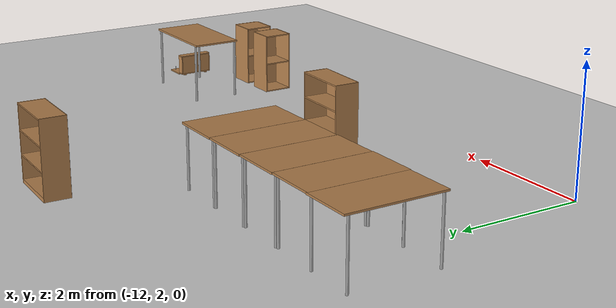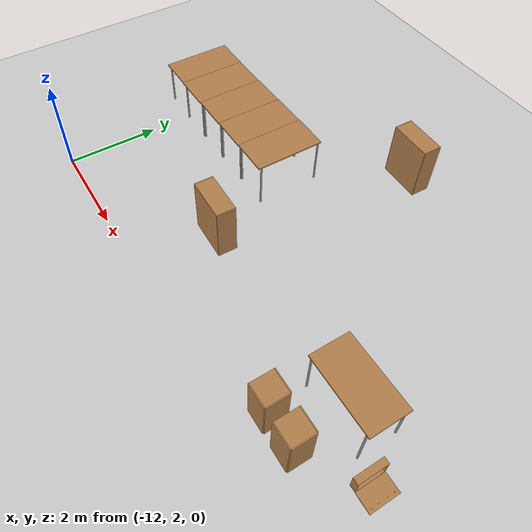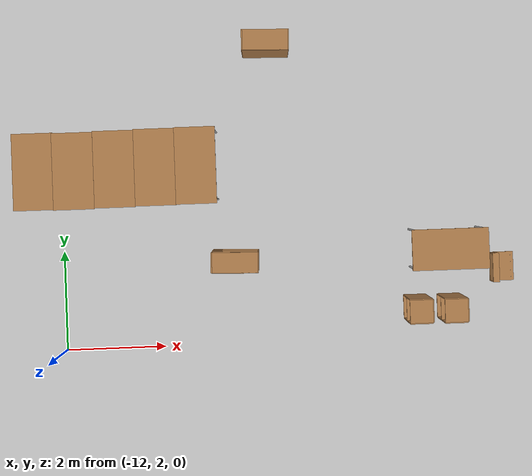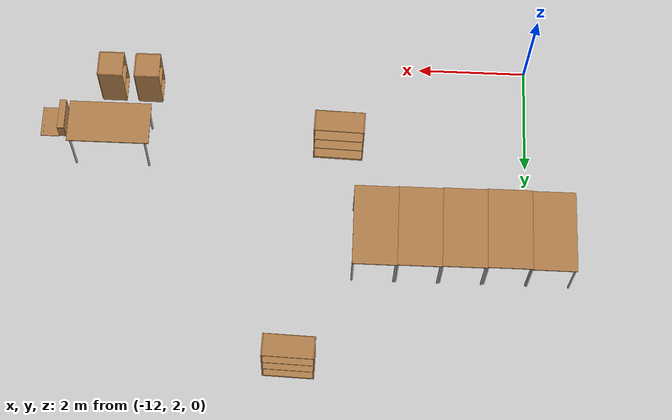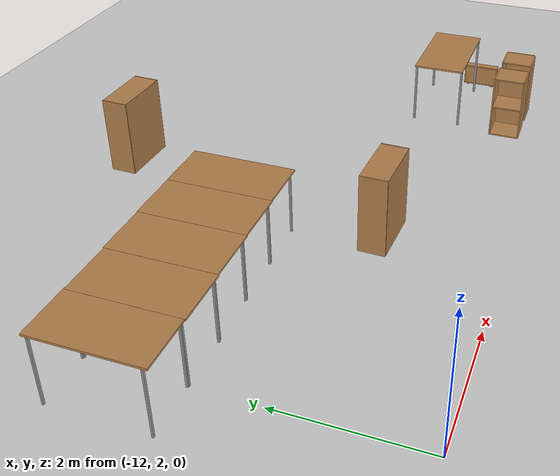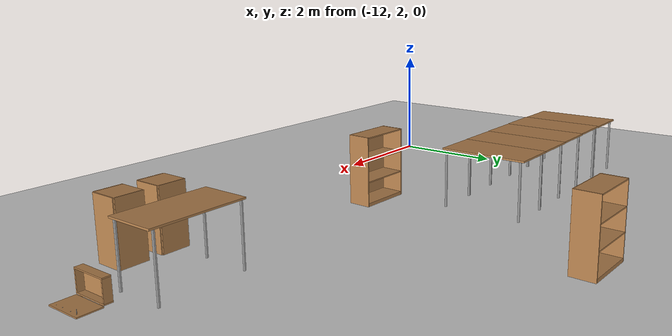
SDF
<sdf version="1.6">
 <world name="default">
  <model name="ground_plane">
   <static>1</static>
   <link name="link">
    <collision name="collision">
     <geometry><plane><normal>0 0 1</normal><size>100 100</size></plane></geometry>
     <surface>
      <contact><collide_bitmask>65535</collide_bitmask></contact>
      <friction><ode><mu>100</mu><mu2>50</mu2></ode></friction>
     </surface>
    </collision>
    <visual name="visual">
     <cast_shadows>0</cast_shadows>
     <geometry><plane><normal>0 0 1</normal><size>100 100</size></plane></geometry>
     <material>
      <script><uri>file://media/materials/scripts/gazebo.material</uri><name>Gazebo/Grey</name></script>
     </material>
    </visual>
   </link>
  </model>
  <model name="table_12">
   <static>1</static>
   <link name="link">
    <collision name="surface">
     <pose>0 0 1 0 -0 0</pose>
     <geometry><box><size>1.5 0.8 0.03</size></box></geometry>
     <surface><friction><ode><mu>0.6</mu><mu2>0.6</mu2></ode></friction></surface>
    </collision>
    <visual name="visual1">
     <pose>0 0 1 0 -0 0</pose>
     <geometry><box><size>1.5 0.8 0.03</size></box></geometry>
     <material>
      <script><uri>file://media/materials/scripts/gazebo.material</uri><name>Gazebo/Wood</name></script>
     </material>
    </visual>
    <collision name="front_left_leg">
     <pose>0.68 0.38 0.5 0 -0 0</pose>
     <geometry><cylinder><radius>0.02</radius><length>1</length></cylinder></geometry>
    </collision>
    <visual name="front_left_leg">
     <pose>0.68 0.38 0.5 0 -0 0</pose>
     <geometry><cylinder><radius>0.02</radius><length>1</length></cylinder></geometry>
     <material>
      <script><uri>file://media/materials/scripts/gazebo.material</uri><name>Gazebo/Grey</name></script>
     </material>
    </visual>
    <collision name="front_right_leg">
     <pose>0.68 -0.38 0.5 0 -0 0</pose>
     <geometry><cylinder><radius>0.02</radius><length>1</length></cylinder></geometry>
    </collision>
    <visual name="front_right_leg">
     <pose>0.68 -0.38 0.5 0 -0 0</pose>
     <geometry><cylinder><radius>0.02</radius><length>1</length></cylinder></geometry>
     <material>
      <script><uri>file://media/materials/scripts/gazebo.material</uri><name>Gazebo/Grey</name></script>
     </material>
    </visual>
    <collision name="back_right_leg">
     <pose>-0.68 -0.38 0.5 0 -0 0</pose>
     <geometry><cylinder><radius>0.02</radius><length>1</length></cylinder></geometry>
    </collision>
    <visual name="back_right_leg">
     <pose>-0.68 -0.38 0.5 0 -0 0</pose>
     <geometry><cylinder><radius>0.02</radius><length>1</length></cylinder></geometry>
     <material>
      <script><uri>file://media/materials/scripts/gazebo.material</uri><name>Gazebo/Grey</name></script>
     </material>
    </visual>
    <collision name="back_left_leg">
     <pose>-0.68 0.38 0.5 0 -0 0</pose>
     <geometry><cylinder><radius>0.02</radius><length>1</length></cylinder></geometry>
    </collision>
    <visual name="back_left_leg">
     <pose>-0.68 0.38 0.5 0 -0 0</pose>
     <geometry><cylinder><radius>0.02</radius><length>1</length></cylinder></geometry>
     <material>
      <script><uri>file://media/materials/scripts/gazebo.material</uri><name>Gazebo/Grey</name></script>
     </material>
    </visual>
   </link>
   <pose>-4.30223 3.82653 0 0 -0 0</pose>
  </model>
  <model name="table_13_clone_0">
   <static>1</static>
   <link name="link">
    <collision name="surface">
     <pose>0 0 1 0 -0 0</pose>
     <geometry><box><size>1.5 0.8 0.03</size></box></geometry>
     <surface><friction><ode><mu>0.6</mu><mu2>0.6</mu2></ode></friction></surface>
    </collision>
    <visual name="visual1">
     <pose>0 0 1 0 -0 0</pose>
     <geometry><box><size>1.5 0.8 0.03</size></box></geometry>
     <material>
      <script><uri>file://media/materials/scripts/gazebo.material</uri><name>Gazebo/Wood</name></script>
     </material>
    </visual>
    <collision name="front_left_leg">
     <pose>0.68 0.38 0.5 0 -0 0</pose>
     <geometry><cylinder><radius>0.02</radius><length>1</length></cylinder></geometry>
    </collision>
    <visual name="front_left_leg">
     <pose>0.68 0.38 0.5 0 -0 0</pose>
     <geometry><cylinder><radius>0.02</radius><length>1</length></cylinder></geometry>
     <material>
      <script><uri>file://media/materials/scripts/gazebo.material</uri><name>Gazebo/Grey</name></script>
     </material>
    </visual>
    <collision name="front_right_leg">
     <pose>0.68 -0.38 0.5 0 -0 0</pose>
     <geometry><cylinder><radius>0.02</radius><length>1</length></cylinder></geometry>
    </collision>
    <visual name="front_right_leg">
     <pose>0.68 -0.38 0.5 0 -0 0</pose>
     <geometry><cylinder><radius>0.02</radius><length>1</length></cylinder></geometry>
     <material>
      <script><uri>file://media/materials/scripts/gazebo.material</uri><name>Gazebo/Grey</name></script>
     </material>
    </visual>
    <collision name="back_right_leg">
     <pose>-0.68 -0.38 0.5 0 -0 0</pose>
     <geometry><cylinder><radius>0.02</radius><length>1</length></cylinder></geometry>
    </collision>
    <visual name="back_right_leg">
     <pose>-0.68 -0.38 0.5 0 -0 0</pose>
     <geometry><cylinder><radius>0.02</radius><length>1</length></cylinder></geometry>
     <material>
      <script><uri>file://media/materials/scripts/gazebo.material</uri><name>Gazebo/Grey</name></script>
     </material>
    </visual>
    <collision name="back_left_leg">
     <pose>-0.68 0.38 0.5 0 -0 0</pose>
     <geometry><cylinder><radius>0.02</radius><length>1</length></cylinder></geometry>
    </collision>
    <visual name="back_left_leg">
     <pose>-0.68 0.38 0.5 0 -0 0</pose>
     <geometry><cylinder><radius>0.02</radius><length>1</length></cylinder></geometry>
     <material>
      <script><uri>file://media/materials/scripts/gazebo.material</uri><name>Gazebo/Grey</name></script>
     </material>
    </visual>
   </link>
   <pose>-12.3756 5.62057 0.002096 -0.000489 -1e-06 -1.57229</pose>
  </model>
  <model name="table_13_clone_1">
   <static>1</static>
   <link name="link">
    <collision name="surface">
     <pose>0 0 1 0 -0 0</pose>
     <geometry><box><size>1.5 0.8 0.03</size></box></geometry>
     <surface><friction><ode><mu>0.6</mu><mu2>0.6</mu2></ode></friction></surface>
    </collision>
    <visual name="visual1">
     <pose>0 0 1 0 -0 0</pose>
     <geometry><box><size>1.5 0.8 0.03</size></box></geometry>
     <material>
      <script><uri>file://media/materials/scripts/gazebo.material</uri><name>Gazebo/Wood</name></script>
     </material>
    </visual>
    <collision name="front_left_leg">
     <pose>0.68 0.38 0.5 0 -0 0</pose>
     <geometry><cylinder><radius>0.02</radius><length>1</length></cylinder></geometry>
    </collision>
    <visual name="front_left_leg">
     <pose>0.68 0.38 0.5 0 -0 0</pose>
     <geometry><cylinder><radius>0.02</radius><length>1</length></cylinder></geometry>
     <material>
      <script><uri>file://media/materials/scripts/gazebo.material</uri><name>Gazebo/Grey</name></script>
     </material>
    </visual>
    <collision name="front_right_leg">
     <pose>0.68 -0.38 0.5 0 -0 0</pose>
     <geometry><cylinder><radius>0.02</radius><length>1</length></cylinder></geometry>
    </collision>
    <visual name="front_right_leg">
     <pose>0.68 -0.38 0.5 0 -0 0</pose>
     <geometry><cylinder><radius>0.02</radius><length>1</length></cylinder></geometry>
     <material>
      <script><uri>file://media/materials/scripts/gazebo.material</uri><name>Gazebo/Grey</name></script>
     </material>
    </visual>
    <collision name="back_right_leg">
     <pose>-0.68 -0.38 0.5 0 -0 0</pose>
     <geometry><cylinder><radius>0.02</radius><length>1</length></cylinder></geometry>
    </collision>
    <visual name="back_right_leg">
     <pose>-0.68 -0.38 0.5 0 -0 0</pose>
     <geometry><cylinder><radius>0.02</radius><length>1</length></cylinder></geometry>
     <material>
      <script><uri>file://media/materials/scripts/gazebo.material</uri><name>Gazebo/Grey</name></script>
     </material>
    </visual>
    <collision name="back_left_leg">
     <pose>-0.68 0.38 0.5 0 -0 0</pose>
     <geometry><cylinder><radius>0.02</radius><length>1</length></cylinder></geometry>
    </collision>
    <visual name="back_left_leg">
     <pose>-0.68 0.38 0.5 0 -0 0</pose>
     <geometry><cylinder><radius>0.02</radius><length>1</length></cylinder></geometry>
     <material>
      <script><uri>file://media/materials/scripts/gazebo.material</uri><name>Gazebo/Grey</name></script>
     </material>
    </visual>
   </link>
   <pose>-11.5994 5.60858 0.002096 -0.000489 -1e-06 -1.57229</pose>
  </model>
  <model name="table_13_clone_2">
   <static>1</static>
   <link name="link">
    <collision name="surface">
     <pose>0 0 1 0 -0 0</pose>
     <geometry><box><size>1.5 0.8 0.03</size></box></geometry>
     <surface><friction><ode><mu>0.6</mu><mu2>0.6</mu2></ode></friction></surface>
    </collision>
    <visual name="visual1">
     <pose>0 0 1 0 -0 0</pose>
     <geometry><box><size>1.5 0.8 0.03</size></box></geometry>
     <material>
      <script><uri>file://media/materials/scripts/gazebo.material</uri><name>Gazebo/Wood</name></script>
     </material>
    </visual>
    <collision name="front_left_leg">
     <pose>0.68 0.38 0.5 0 -0 0</pose>
     <geometry><cylinder><radius>0.02</radius><length>1</length></cylinder></geometry>
    </collision>
    <visual name="front_left_leg">
     <pose>0.68 0.38 0.5 0 -0 0</pose>
     <geometry><cylinder><radius>0.02</radius><length>1</length></cylinder></geometry>
     <material>
      <script><uri>file://media/materials/scripts/gazebo.material</uri><name>Gazebo/Grey</name></script>
     </material>
    </visual>
    <collision name="front_right_leg">
     <pose>0.68 -0.38 0.5 0 -0 0</pose>
     <geometry><cylinder><radius>0.02</radius><length>1</length></cylinder></geometry>
    </collision>
    <visual name="front_right_leg">
     <pose>0.68 -0.38 0.5 0 -0 0</pose>
     <geometry><cylinder><radius>0.02</radius><length>1</length></cylinder></geometry>
     <material>
      <script><uri>file://media/materials/scripts/gazebo.material</uri><name>Gazebo/Grey</name></script>
     </material>
    </visual>
    <collision name="back_right_leg">
     <pose>-0.68 -0.38 0.5 0 -0 0</pose>
     <geometry><cylinder><radius>0.02</radius><length>1</length></cylinder></geometry>
    </collision>
    <visual name="back_right_leg">
     <pose>-0.68 -0.38 0.5 0 -0 0</pose>
     <geometry><cylinder><radius>0.02</radius><length>1</length></cylinder></geometry>
     <material>
      <script><uri>file://media/materials/scripts/gazebo.material</uri><name>Gazebo/Grey</name></script>
     </material>
    </visual>
    <collision name="back_left_leg">
     <pose>-0.68 0.38 0.5 0 -0 0</pose>
     <geometry><cylinder><radius>0.02</radius><length>1</length></cylinder></geometry>
    </collision>
    <visual name="back_left_leg">
     <pose>-0.68 0.38 0.5 0 -0 0</pose>
     <geometry><cylinder><radius>0.02</radius><length>1</length></cylinder></geometry>
     <material>
      <script><uri>file://media/materials/scripts/gazebo.material</uri><name>Gazebo/Grey</name></script>
     </material>
    </visual>
   </link>
   <pose>-10.7992 5.62021 0.002096 -0.000489 -1e-06 -1.57229</pose>
  </model>
  <model name="table_13_clone_3">
   <static>1</static>
   <link name="link">
    <collision name="surface">
     <pose>0 0 1 0 -0 0</pose>
     <geometry><box><size>1.5 0.8 0.03</size></box></geometry>
     <surface><friction><ode><mu>0.6</mu><mu2>0.6</mu2></ode></friction></surface>
    </collision>
    <visual name="visual1">
     <pose>0 0 1 0 -0 0</pose>
     <geometry><box><size>1.5 0.8 0.03</size></box></geometry>
     <material>
      <script><uri>file://media/materials/scripts/gazebo.material</uri><name>Gazebo/Wood</name></script>
     </material>
    </visual>
    <collision name="front_left_leg">
     <pose>0.68 0.38 0.5 0 -0 0</pose>
     <geometry><cylinder><radius>0.02</radius><length>1</length></cylinder></geometry>
    </collision>
    <visual name="front_left_leg">
     <pose>0.68 0.38 0.5 0 -0 0</pose>
     <geometry><cylinder><radius>0.02</radius><length>1</length></cylinder></geometry>
     <material>
      <script><uri>file://media/materials/scripts/gazebo.material</uri><name>Gazebo/Grey</name></script>
     </material>
    </visual>
    <collision name="front_right_leg">
     <pose>0.68 -0.38 0.5 0 -0 0</pose>
     <geometry><cylinder><radius>0.02</radius><length>1</length></cylinder></geometry>
    </collision>
    <visual name="front_right_leg">
     <pose>0.68 -0.38 0.5 0 -0 0</pose>
     <geometry><cylinder><radius>0.02</radius><length>1</length></cylinder></geometry>
     <material>
      <script><uri>file://media/materials/scripts/gazebo.material</uri><name>Gazebo/Grey</name></script>
     </material>
    </visual>
    <collision name="back_right_leg">
     <pose>-0.68 -0.38 0.5 0 -0 0</pose>
     <geometry><cylinder><radius>0.02</radius><length>1</length></cylinder></geometry>
    </collision>
    <visual name="back_right_leg">
     <pose>-0.68 -0.38 0.5 0 -0 0</pose>
     <geometry><cylinder><radius>0.02</radius><length>1</length></cylinder></geometry>
     <material>
      <script><uri>file://media/materials/scripts/gazebo.material</uri><name>Gazebo/Grey</name></script>
     </material>
    </visual>
    <collision name="back_left_leg">
     <pose>-0.68 0.38 0.5 0 -0 0</pose>
     <geometry><cylinder><radius>0.02</radius><length>1</length></cylinder></geometry>
    </collision>
    <visual name="back_left_leg">
     <pose>-0.68 0.38 0.5 0 -0 0</pose>
     <geometry><cylinder><radius>0.02</radius><length>1</length></cylinder></geometry>
     <material>
      <script><uri>file://media/materials/scripts/gazebo.material</uri><name>Gazebo/Grey</name></script>
     </material>
    </visual>
   </link>
   <pose>-10.005 5.63035 0.002096 -0.000489 -1e-06 -1.57229</pose>
  </model>
  <model name="table_13_clone_4">
   <static>1</static>
   <link name="link">
    <collision name="surface">
     <pose>0 0 1 0 -0 0</pose>
     <geometry><box><size>1.5 0.8 0.03</size></box></geometry>
     <surface><friction><ode><mu>0.6</mu><mu2>0.6</mu2></ode></friction></surface>
    </collision>
    <visual name="visual1">
     <pose>0 0 1 0 -0 0</pose>
     <geometry><box><size>1.5 0.8 0.03</size></box></geometry>
     <material>
      <script><uri>file://media/materials/scripts/gazebo.material</uri><name>Gazebo/Wood</name></script>
     </material>
    </visual>
    <collision name="front_left_leg">
     <pose>0.68 0.38 0.5 0 -0 0</pose>
     <geometry><cylinder><radius>0.02</radius><length>1</length></cylinder></geometry>
    </collision>
    <visual name="front_left_leg">
     <pose>0.68 0.38 0.5 0 -0 0</pose>
     <geometry><cylinder><radius>0.02</radius><length>1</length></cylinder></geometry>
     <material>
      <script><uri>file://media/materials/scripts/gazebo.material</uri><name>Gazebo/Grey</name></script>
     </material>
    </visual>
    <collision name="front_right_leg">
     <pose>0.68 -0.38 0.5 0 -0 0</pose>
     <geometry><cylinder><radius>0.02</radius><length>1</length></cylinder></geometry>
    </collision>
    <visual name="front_right_leg">
     <pose>0.68 -0.38 0.5 0 -0 0</pose>
     <geometry><cylinder><radius>0.02</radius><length>1</length></cylinder></geometry>
     <material>
      <script><uri>file://media/materials/scripts/gazebo.material</uri><name>Gazebo/Grey</name></script>
     </material>
    </visual>
    <collision name="back_right_leg">
     <pose>-0.68 -0.38 0.5 0 -0 0</pose>
     <geometry><cylinder><radius>0.02</radius><length>1</length></cylinder></geometry>
    </collision>
    <visual name="back_right_leg">
     <pose>-0.68 -0.38 0.5 0 -0 0</pose>
     <geometry><cylinder><radius>0.02</radius><length>1</length></cylinder></geometry>
     <material>
      <script><uri>file://media/materials/scripts/gazebo.material</uri><name>Gazebo/Grey</name></script>
     </material>
    </visual>
    <collision name="back_left_leg">
     <pose>-0.68 0.38 0.5 0 -0 0</pose>
     <geometry><cylinder><radius>0.02</radius><length>1</length></cylinder></geometry>
    </collision>
    <visual name="back_left_leg">
     <pose>-0.68 0.38 0.5 0 -0 0</pose>
     <geometry><cylinder><radius>0.02</radius><length>1</length></cylinder></geometry>
     <material>
      <script><uri>file://media/materials/scripts/gazebo.material</uri><name>Gazebo/Grey</name></script>
     </material>
    </visual>
   </link>
   <pose>-9.2126 5.63744 0.002102 -0.000489 -1e-06 -1.57229</pose>
  </model>
  <model name="wooden_case_metal_peg">
   <link name="wooden_case::base">
    <pose>0 0 0.024 0 -0 0</pose>
    <inertial>
     <pose>-0.022184 0 0.171592 0 -0 0</pose>
     <mass>3.96264</mass>
     <inertia>
      <ixx>0.213536</ixx>
      <ixy>0</ixy>
      <ixz>0.000779377</ixz>
      <iyy>0.0708943</iyy>
      <iyz>0</iyz>
      <izz>0.154604</izz>
     </inertia>
    </inertial>
    <collision name="collision_back">
     <pose>-0.053975 0 0.1778 0 -0 0</pose>
     <geometry><box><size>0.01905 0.5461 0.3175</size></box></geometry>
     <surface>
      <contact>
       <poissons_ratio>0.347</poissons_ratio>
       <elastic_modulus>8.8e+09</elastic_modulus>
       <ode><kp>100000</kp><kd>100</kd><max_vel>100</max_vel><min_depth>0.001</min_depth></ode>
      </contact>
      <friction>
       <torsional>
        <coefficient>1</coefficient>
        <use_patch_radius>0</use_patch_radius>
        <surface_radius>0.01</surface_radius>
       </torsional>
      </friction>
     </surface>
    </collision>
    <visual name="visual_back">
     <pose>-0.053975 0 0.1778 0 -0 0</pose>
     <geometry><box><size>0.01905 0.5461 0.3175</size></box></geometry>
     <material>
      <script><uri>file://media/materials/scripts/gazebo.material</uri><name>Gazebo/Wood</name></script>
     </material>
    </visual>
    <collision name="collision_bottom">
     <pose>0 0 0.009525 0 -0 0</pose>
     <geometry><box><size>0.127 0.5842 0.01905</size></box></geometry>
     <surface>
      <contact>
       <poissons_ratio>0.347</poissons_ratio>
       <elastic_modulus>8.8e+09</elastic_modulus>
       <ode><kp>100000</kp><kd>100</kd><max_vel>100</max_vel><min_depth>0.001</min_depth></ode>
      </contact>
      <friction>
       <torsional>
        <coefficient>1</coefficient>
        <use_patch_radius>0</use_patch_radius>
        <surface_radius>0.01</surface_radius>
       </torsional>
      </friction>
     </surface>
    </collision>
    <visual name="visual_bottom">
     <pose>0 0 0.009525 0 -0 0</pose>
     <geometry><box><size>0.127 0.5842 0.01905</size></box></geometry>
     <material>
      <script><uri>file://media/materials/scripts/gazebo.material</uri><name>Gazebo/Wood</name></script>
     </material>
    </visual>
    <collision name="collision_top">
     <pose>0 0 0.346075 0 -0 0</pose>
     <geometry><box><size>0.127 0.5842 0.01905</size></box></geometry>
     <surface>
      <contact>
       <poissons_ratio>0.347</poissons_ratio>
       <elastic_modulus>8.8e+09</elastic_modulus>
       <ode><kp>100000</kp><kd>100</kd><max_vel>100</max_vel><min_depth>0.001</min_depth></ode>
      </contact>
      <friction>
       <torsional>
        <coefficient>1</coefficient>
        <use_patch_radius>0</use_patch_radius>
        <surface_radius>0.01</surface_radius>
       </torsional>
      </friction>
     </surface>
    </collision>
    <visual name="visual_top">
     <pose>0 0 0.346075 0 -0 0</pose>
     <geometry><box><size>0.127 0.5842 0.01905</size></box></geometry>
     <material>
      <script><uri>file://media/materials/scripts/gazebo.material</uri><name>Gazebo/Wood</name></script>
     </material>
    </visual>
    <collision name="collision_left">
     <pose>0 -0.282575 0.1778 0 -0 0</pose>
     <geometry><box><size>0.127 0.01905 0.3175</size></box></geometry>
     <surface>
      <contact>
       <poissons_ratio>0.347</poissons_ratio>
       <elastic_modulus>8.8e+09</elastic_modulus>
       <ode><kp>100000</kp><kd>100</kd><max_vel>100</max_vel><min_depth>0.001</min_depth></ode>
      </contact>
      <friction>
       <torsional>
        <coefficient>1</coefficient>
        <use_patch_radius>0</use_patch_radius>
        <surface_radius>0.01</surface_radius>
       </torsional>
      </friction>
     </surface>
    </collision>
    <visual name="visual_left">
     <pose>0 -0.282575 0.1778 0 -0 0</pose>
     <geometry><box><size>0.127 0.01905 0.3175</size></box></geometry>
     <material>
      <script><uri>file://media/materials/scripts/gazebo.material</uri><name>Gazebo/Wood</name></script>
     </material>
    </visual>
    <collision name="collision_right">
     <pose>0 0.282575 0.1778 0 -0 0</pose>
     <geometry><box><size>0.127 0.01905 0.3175</size></box></geometry>
     <surface>
      <contact>
       <poissons_ratio>0.347</poissons_ratio>
       <elastic_modulus>8.8e+09</elastic_modulus>
       <ode><kp>100000</kp><kd>100</kd><max_vel>100</max_vel><min_depth>0.001</min_depth></ode>
      </contact>
      <friction>
       <torsional>
        <coefficient>1</coefficient>
        <use_patch_radius>0</use_patch_radius>
        <surface_radius>0.01</surface_radius>
       </torsional>
      </friction>
     </surface>
    </collision>
    <visual name="visual_right">
     <pose>0 0.282575 0.1778 0 -0 0</pose>
     <geometry><box><size>0.127 0.01905 0.3175</size></box></geometry>
     <material>
      <script><uri>file://media/materials/scripts/gazebo.material</uri><name>Gazebo/Wood</name></script>
     </material>
    </visual>
    <collision name="collision_block_left">
     <pose>0.0095 -0.2151 -0.012 0 -0 0</pose>
     <geometry><box><size>0.108 0.05 0.024</size></box></geometry>
     <surface>
      <contact>
       <poissons_ratio>0.347</poissons_ratio>
       <elastic_modulus>8.8e+09</elastic_modulus>
       <ode><kp>100000</kp><kd>100</kd><max_vel>100</max_vel><min_depth>0.001</min_depth></ode>
      </contact>
      <friction>
       <torsional>
        <coefficient>1</coefficient>
        <use_patch_radius>0</use_patch_radius>
        <surface_radius>0.01</surface_radius>
       </torsional>
      </friction>
     </surface>
    </collision>
    <visual name="visual_block_left">
     <pose>0.0095 -0.2151 -0.012 0 -0 0</pose>
     <geometry><box><size>0.108 0.05 0.024</size></box></geometry>
     <material>
      <script><uri>file://media/materials/scripts/gazebo.material</uri><name>Gazebo/Wood</name></script>
     </material>
    </visual>
    <collision name="collision_block_right">
     <pose>0.0095 0.2151 -0.012 0 -0 0</pose>
     <geometry><box><size>0.108 0.05 0.024</size></box></geometry>
     <surface>
      <contact>
       <poissons_ratio>0.347</poissons_ratio>
       <elastic_modulus>8.8e+09</elastic_modulus>
       <ode><kp>100000</kp><kd>100</kd><max_vel>100</max_vel><min_depth>0.001</min_depth></ode>
      </contact>
      <friction>
       <torsional>
        <coefficient>1</coefficient>
        <use_patch_radius>0</use_patch_radius>
        <surface_radius>0.01</surface_radius>
       </torsional>
      </friction>
     </surface>
    </collision>
    <visual name="visual_block_right">
     <pose>0.0095 0.2151 -0.012 0 -0 0</pose>
     <geometry><box><size>0.108 0.05 0.024</size></box></geometry>
     <material>
      <script><uri>file://media/materials/scripts/gazebo.material</uri><name>Gazebo/Wood</name></script>
     </material>
    </visual>
   </link>
   <link name="wooden_case::lid">
    <pose>0.243775 0 0.009525 0 -0 0</pose>
    <inertial>
     <mass>1.97874</mass>
     <inertia>
      <ixx>0.0563367</ixx>
      <ixy>0</ixy>
      <ixz>0</ixz>
      <iyy>0.020911</iyy>
      <iyz>0</iyz>
      <izz>0.0771281</izz>
     </inertia>
    </inertial>
    <collision name="collision">
     <geometry><box><size>0.3556 0.5842 0.01905</size></box></geometry>
     <surface>
      <contact>
       <poissons_ratio>0.347</poissons_ratio>
       <elastic_modulus>8.8e+09</elastic_modulus>
       <ode><kp>100000</kp><kd>100</kd><max_vel>100</max_vel><min_depth>0.001</min_depth></ode>
      </contact>
      <friction>
       <torsional>
        <coefficient>1</coefficient>
        <use_patch_radius>0</use_patch_radius>
        <surface_radius>0.01</surface_radius>
       </torsional>
      </friction>
     </surface>
    </collision>
    <visual name="visual">
     <geometry><box><size>0.3556 0.5842 0.01905</size></box></geometry>
     <material>
      <script><uri>file://media/materials/scripts/gazebo.material</uri><name>Gazebo/Wood</name></script>
     </material>
    </visual>
    <visual name="tee_nut_1">
     <pose>0.122 -0.216 0 0 -0 0</pose>
     <geometry><cylinder><radius>0.00635</radius><length>0.0192405</length></cylinder></geometry>
     <material>
      <script><uri>file://media/materials/scripts/gazebo.material</uri><name>Gazebo/Grey</name></script>
     </material>
    </visual>
    <visual name="tee_nut_2">
     <pose>0.122 -0.088 0 0 -0 0</pose>
     <geometry><cylinder><radius>0.00635</radius><length>0.0192405</length></cylinder></geometry>
     <material>
      <script><uri>file://media/materials/scripts/gazebo.material</uri><name>Gazebo/Grey</name></script>
     </material>
    </visual>
    <visual name="tee_nut_3">
     <pose>0.122 0.088 0 0 -0 0</pose>
     <geometry><cylinder><radius>0.00635</radius><length>0.0192405</length></cylinder></geometry>
     <material>
      <script><uri>file://media/materials/scripts/gazebo.material</uri><name>Gazebo/Grey</name></script>
     </material>
    </visual>
    <visual name="tee_nut_4">
     <pose>0.122 0.216 0 0 -0 0</pose>
     <geometry><cylinder><radius>0.00635</radius><length>0.0192405</length></cylinder></geometry>
     <material>
      <script><uri>file://media/materials/scripts/gazebo.material</uri><name>Gazebo/Grey</name></script>
     </material>
    </visual>
   </link>
   <joint name="wooden_case::lid_hinge" type="revolute">
    <pose>-0.1778 0 0.01905 0 -0 0</pose>
    <parent>wooden_case::base</parent>
    <child>wooden_case::lid</child>
    <axis>
     <xyz>0 1 0</xyz>
     <limit><upper>0.523599</upper><lower>-1.5708</lower></limit>
     <use_parent_model_frame>0</use_parent_model_frame>
     <dynamics><spring_reference>0</spring_reference><spring_stiffness>0</spring_stiffness></dynamics>
    </axis>
   </joint>
   <link name="peg::link">
    <pose>0.365774 0.216 0.05005 0 -0 0</pose>
    <inertial>
     <mass>0.0121</mass>
     <inertia>
      <ixx>3.90898e-06</ixx>
      <ixy>0</ixy>
      <ixz>0</ixz>
      <iyy>3.90898e-06</iyy>
      <iyz>0</iyz>
      <izz>6.58845e-08</izz>
     </inertia>
    </inertial>
    <collision name="collision">
     <geometry><cylinder><radius>0.0033</radius><length>0.062</length></cylinder></geometry>
     <surface>
      <contact>
       <poissons_ratio>0.305</poissons_ratio>
       <elastic_modulus>2e+11</elastic_modulus>
       <ode><kp>100000</kp><kd>100</kd><max_vel>100</max_vel><min_depth>0.001</min_depth></ode>
      </contact>
      <friction>
       <torsional>
        <coefficient>1</coefficient>
        <use_patch_radius>0</use_patch_radius>
        <surface_radius>0.01</surface_radius>
       </torsional>
      </friction>
     </surface>
    </collision>
    <visual name="visual">
     <geometry><cylinder><radius>0.0033</radius><length>0.062</length></cylinder></geometry>
     <material>
      <script><uri>file://media/materials/scripts/gazebo.material</uri><name>Gazebo/Grey</name></script>
     </material>
    </visual>
   </link>
   <joint name="case_peg" type="revolute">
    <child>peg::link</child>
    <parent>wooden_case::lid</parent>
    <axis>
     <xyz>0 0 1</xyz>
     <limit><upper>0</upper><lower>0</lower></limit>
     <use_parent_model_frame>0</use_parent_model_frame>
     <dynamics><spring_reference>0</spring_reference><spring_stiffness>0</spring_stiffness></dynamics>
    </axis>
   </joint>
   <pose>-3.30085 3.38994 -0.001057 0 -0.000428 1e-06</pose>
  </model>
  <model name="bookshelf_clone_clone_0">
   <static>1</static>
   <link name="link">
    <inertial><mass>1</mass></inertial>
    <collision name="back">
     <pose>0 0.005 0.6 0 -0 0</pose>
     <geometry><box><size>0.9 0.01 1.2</size></box></geometry>
    </collision>
    <visual name="visual1">
     <pose>0 0.005 0.6 0 -0 0</pose>
     <geometry><box><size>0.9 0.01 1.2</size></box></geometry>
     <material>
      <script><uri>file://media/materials/scripts/gazebo.material</uri><name>Gazebo/Wood</name></script>
     </material>
    </visual>
    <collision name="left_side">
     <pose>0.45 -0.195 0.6 0 -0 0</pose>
     <geometry><box><size>0.02 0.4 1.2</size></box></geometry>
    </collision>
    <visual name="visual2">
     <pose>0.45 -0.195 0.6 0 -0 0</pose>
     <geometry><box><size>0.02 0.4 1.2</size></box></geometry>
     <material>
      <script><uri>file://media/materials/scripts/gazebo.material</uri><name>Gazebo/Wood</name></script>
     </material>
    </visual>
    <collision name="right_side">
     <pose>-0.45 -0.195 0.6 0 -0 0</pose>
     <geometry><box><size>0.02 0.4 1.2</size></box></geometry>
    </collision>
    <visual name="visual3">
     <pose>-0.45 -0.195 0.6 0 -0 0</pose>
     <geometry><box><size>0.02 0.4 1.2</size></box></geometry>
     <material>
      <script><uri>file://media/materials/scripts/gazebo.material</uri><name>Gazebo/Wood</name></script>
     </material>
    </visual>
    <collision name="bottom">
     <pose>0 -0.195 0.03 0 -0 0</pose>
     <geometry><box><size>0.88 0.4 0.06</size></box></geometry>
    </collision>
    <visual name="visual4">
     <pose>0 -0.195 0.03 0 -0 0</pose>
     <geometry><box><size>0.88 0.4 0.06</size></box></geometry>
     <material>
      <script><uri>file://media/materials/scripts/gazebo.material</uri><name>Gazebo/Wood</name></script>
     </material>
    </visual>
    <collision name="top">
     <pose>0 -0.195 1.19 0 -0 0</pose>
     <geometry><box><size>0.88 0.4 0.02</size></box></geometry>
    </collision>
    <visual name="visual5">
     <pose>0 -0.195 1.19 0 -0 0</pose>
     <geometry><box><size>0.88 0.4 0.02</size></box></geometry>
     <material>
      <script><uri>file://media/materials/scripts/gazebo.material</uri><name>Gazebo/Wood</name></script>
     </material>
    </visual>
    <collision name="low_shelf">
     <pose>0 -0.195 0.43 0 -0 0</pose>
     <geometry><box><size>0.88 0.4 0.02</size></box></geometry>
    </collision>
    <visual name="visual6">
     <pose>0 -0.195 0.43 0 -0 0</pose>
     <geometry><box><size>0.88 0.4 0.02</size></box></geometry>
     <material>
      <script><uri>file://media/materials/scripts/gazebo.material</uri><name>Gazebo/Wood</name></script>
     </material>
    </visual>
    <collision name="high_shelf">
     <pose>0 -0.195 0.8 0 -0 0</pose>
     <geometry><box><size>0.88 0.4 0.02</size></box></geometry>
    </collision>
    <visual name="visual7">
     <pose>0 -0.195 0.8 0 -0 0</pose>
     <geometry><box><size>0.88 0.4 0.02</size></box></geometry>
     <material>
      <script><uri>file://media/materials/scripts/gazebo.material</uri><name>Gazebo/Wood</name></script>
     </material>
    </visual>
   </link>
   <pose>-7.77643 7.81342 0 0 -0 3.11086</pose>
  </model>
  <model name="bookshelf_clone_clone_1">
   <static>1</static>
   <link name="link">
    <inertial><mass>1</mass></inertial>
    <collision name="back">
     <pose>0 0.005 0.6 0 -0 0</pose>
     <geometry><box><size>0.9 0.01 1.2</size></box></geometry>
    </collision>
    <visual name="visual1">
     <pose>0 0.005 0.6 0 -0 0</pose>
     <geometry><box><size>0.9 0.01 1.2</size></box></geometry>
     <material>
      <script><uri>file://media/materials/scripts/gazebo.material</uri><name>Gazebo/Wood</name></script>
     </material>
    </visual>
    <collision name="left_side">
     <pose>0.45 -0.195 0.6 0 -0 0</pose>
     <geometry><box><size>0.02 0.4 1.2</size></box></geometry>
    </collision>
    <visual name="visual2">
     <pose>0.45 -0.195 0.6 0 -0 0</pose>
     <geometry><box><size>0.02 0.4 1.2</size></box></geometry>
     <material>
      <script><uri>file://media/materials/scripts/gazebo.material</uri><name>Gazebo/Wood</name></script>
     </material>
    </visual>
    <collision name="right_side">
     <pose>-0.45 -0.195 0.6 0 -0 0</pose>
     <geometry><box><size>0.02 0.4 1.2</size></box></geometry>
    </collision>
    <visual name="visual3">
     <pose>-0.45 -0.195 0.6 0 -0 0</pose>
     <geometry><box><size>0.02 0.4 1.2</size></box></geometry>
     <material>
      <script><uri>file://media/materials/scripts/gazebo.material</uri><name>Gazebo/Wood</name></script>
     </material>
    </visual>
    <collision name="bottom">
     <pose>0 -0.195 0.03 0 -0 0</pose>
     <geometry><box><size>0.88 0.4 0.06</size></box></geometry>
    </collision>
    <visual name="visual4">
     <pose>0 -0.195 0.03 0 -0 0</pose>
     <geometry><box><size>0.88 0.4 0.06</size></box></geometry>
     <material>
      <script><uri>file://media/materials/scripts/gazebo.material</uri><name>Gazebo/Wood</name></script>
     </material>
    </visual>
    <collision name="top">
     <pose>0 -0.195 1.19 0 -0 0</pose>
     <geometry><box><size>0.88 0.4 0.02</size></box></geometry>
    </collision>
    <visual name="visual5">
     <pose>0 -0.195 1.19 0 -0 0</pose>
     <geometry><box><size>0.88 0.4 0.02</size></box></geometry>
     <material>
      <script><uri>file://media/materials/scripts/gazebo.material</uri><name>Gazebo/Wood</name></script>
     </material>
    </visual>
    <collision name="low_shelf">
     <pose>0 -0.195 0.43 0 -0 0</pose>
     <geometry><box><size>0.88 0.4 0.02</size></box></geometry>
    </collision>
    <visual name="visual6">
     <pose>0 -0.195 0.43 0 -0 0</pose>
     <geometry><box><size>0.88 0.4 0.02</size></box></geometry>
     <material>
      <script><uri>file://media/materials/scripts/gazebo.material</uri><name>Gazebo/Wood</name></script>
     </material>
    </visual>
    <collision name="high_shelf">
     <pose>0 -0.195 0.8 0 -0 0</pose>
     <geometry><box><size>0.88 0.4 0.02</size></box></geometry>
    </collision>
    <visual name="visual7">
     <pose>0 -0.195 0.8 0 -0 0</pose>
     <geometry><box><size>0.88 0.4 0.02</size></box></geometry>
     <material>
      <script><uri>file://media/materials/scripts/gazebo.material</uri><name>Gazebo/Wood</name></script>
     </material>
    </visual>
   </link>
   <pose>-8.51233 3.53181 0 0 -0 3.11086</pose>
  </model>
  <model name="cabinet_0">
   <static>1</static>
   <link name="cabinet_bottom_plate">
    <inertial>
     <pose>0 0 -1 0 -0 0</pose>
     <inertia><ixx>2.05</ixx><ixy>0</ixy><ixz>0</ixz><iyy>2.05</iyy><iyz>0</iyz><izz>2.05</izz></inertia>
     <mass>25</mass>
    </inertial>
    <collision name="cabinet_bottom_plate_geom">
     <pose>0 0 0.01 0 -0 0</pose>
     <geometry><box><size>0.45 0.45 0.02</size></box></geometry>
    </collision>
    <visual name="cabinet_bottom_plate_geom_visual">
     <pose>0 0 0.01 0 -0 0</pose>
     <geometry><box><size>0.45 0.45 0.02</size></box></geometry>
     <material>
      <script><uri>file://media/materials/scripts/gazebo.material</uri><name>Gazebo/Wood</name></script>
     </material>
    </visual>
    <collision name="cabinet_bottom_plate_geom_cabinet_back_plate">
     <pose>0.235 0 0.51 0 -0 0</pose>
     <geometry><box><size>0.02 0.45 1.02</size></box></geometry>
    </collision>
    <visual name="cabinet_bottom_plate_geom_cabinet_back_plate_visual">
     <pose>0.235 0 0.51 0 -0 0</pose>
     <geometry><box><size>0.02 0.45 1.02</size></box></geometry>
     <material>
      <script><uri>file://media/materials/scripts/gazebo.material</uri><name>Gazebo/Wood</name></script>
     </material>
    </visual>
    <collision name="cabinet_bottom_plate_geom_cabinet_left_plate">
     <pose>0 0.235 0.51 0 -0 0</pose>
     <geometry><box><size>0.45 0.02 1.02</size></box></geometry>
    </collision>
    <visual name="cabinet_bottom_plate_geom_cabinet_left_plate_visual">
     <pose>0 0.235 0.51 0 -0 0</pose>
     <geometry><box><size>0.45 0.02 1.02</size></box></geometry>
     <material>
      <script><uri>file://media/materials/scripts/gazebo.material</uri><name>Gazebo/Wood</name></script>
     </material>
    </visual>
    <collision name="cabinet_bottom_plate_geom_cabinet_middle_plate">
     <pose>0 0 0.51 0 -0 0</pose>
     <geometry><box><size>0.45 0.45 0.02</size></box></geometry>
    </collision>
    <visual name="cabinet_bottom_plate_geom_cabinet_middle_plate_visual">
     <pose>0 0 0.51 0 -0 0</pose>
     <geometry><box><size>0.45 0.45 0.02</size></box></geometry>
     <material>
      <script><uri>file://media/materials/scripts/gazebo.material</uri><name>Gazebo/Wood</name></script>
     </material>
    </visual>
    <collision name="cabinet_bottom_plate_geom_cabinet_right_plate">
     <pose>0 -0.235 0.51 0 -0 0</pose>
     <geometry><box><size>0.45 0.02 1.02</size></box></geometry>
    </collision>
    <visual name="cabinet_bottom_plate_geom_cabinet_right_plate_visual">
     <pose>0 -0.235 0.51 0 -0 0</pose>
     <geometry><box><size>0.45 0.02 1.02</size></box></geometry>
     <material>
      <script><uri>file://media/materials/scripts/gazebo.material</uri><name>Gazebo/Wood</name></script>
     </material>
    </visual>
    <collision name="cabinet_bottom_plate_geom_cabinet_top_plate">
     <pose>0 0 1.01 0 -0 0</pose>
     <geometry><box><size>0.45 0.45 0.02</size></box></geometry>
    </collision>
    <visual name="cabinet_bottom_plate_geom_cabinet_top_plate_visual">
     <pose>0 0 1.01 0 -0 0</pose>
     <geometry><box><size>0.45 0.45 0.02</size></box></geometry>
     <material>
      <script><uri>file://media/materials/scripts/gazebo.material</uri><name>Gazebo/Wood</name></script>
     </material>
    </visual>
   </link>
   <pose>-4.91291 2.63586 0 0 -0 0</pose>
  </model>
  <model name="cabinet_1">
   <static>1</static>
   <link name="cabinet_bottom_plate">
    <inertial>
     <pose>0 0 -1 0 -0 0</pose>
     <inertia><ixx>2.05</ixx><ixy>0</ixy><ixz>0</ixz><iyy>2.05</iyy><iyz>0</iyz><izz>2.05</izz></inertia>
     <mass>25</mass>
    </inertial>
    <collision name="cabinet_bottom_plate_geom">
     <pose>0 0 0.01 0 -0 0</pose>
     <geometry><box><size>0.45 0.45 0.02</size></box></geometry>
    </collision>
    <visual name="cabinet_bottom_plate_geom_visual">
     <pose>0 0 0.01 0 -0 0</pose>
     <geometry><box><size>0.45 0.45 0.02</size></box></geometry>
     <material>
      <script><uri>file://media/materials/scripts/gazebo.material</uri><name>Gazebo/Wood</name></script>
     </material>
    </visual>
    <collision name="cabinet_bottom_plate_geom_cabinet_back_plate">
     <pose>0.235 0 0.51 0 -0 0</pose>
     <geometry><box><size>0.02 0.45 1.02</size></box></geometry>
    </collision>
    <visual name="cabinet_bottom_plate_geom_cabinet_back_plate_visual">
     <pose>0.235 0 0.51 0 -0 0</pose>
     <geometry><box><size>0.02 0.45 1.02</size></box></geometry>
     <material>
      <script><uri>file://media/materials/scripts/gazebo.material</uri><name>Gazebo/Wood</name></script>
     </material>
    </visual>
    <collision name="cabinet_bottom_plate_geom_cabinet_left_plate">
     <pose>0 0.235 0.51 0 -0 0</pose>
     <geometry><box><size>0.45 0.02 1.02</size></box></geometry>
    </collision>
    <visual name="cabinet_bottom_plate_geom_cabinet_left_plate_visual">
     <pose>0 0.235 0.51 0 -0 0</pose>
     <geometry><box><size>0.45 0.02 1.02</size></box></geometry>
     <material>
      <script><uri>file://media/materials/scripts/gazebo.material</uri><name>Gazebo/Wood</name></script>
     </material>
    </visual>
    <collision name="cabinet_bottom_plate_geom_cabinet_middle_plate">
     <pose>0 0 0.51 0 -0 0</pose>
     <geometry><box><size>0.45 0.45 0.02</size></box></geometry>
    </collision>
    <visual name="cabinet_bottom_plate_geom_cabinet_middle_plate_visual">
     <pose>0 0 0.51 0 -0 0</pose>
     <geometry><box><size>0.45 0.45 0.02</size></box></geometry>
     <material>
      <script><uri>file://media/materials/scripts/gazebo.material</uri><name>Gazebo/Wood</name></script>
     </material>
    </visual>
    <collision name="cabinet_bottom_plate_geom_cabinet_right_plate">
     <pose>0 -0.235 0.51 0 -0 0</pose>
     <geometry><box><size>0.45 0.02 1.02</size></box></geometry>
    </collision>
    <visual name="cabinet_bottom_plate_geom_cabinet_right_plate_visual">
     <pose>0 -0.235 0.51 0 -0 0</pose>
     <geometry><box><size>0.45 0.02 1.02</size></box></geometry>
     <material>
      <script><uri>file://media/materials/scripts/gazebo.material</uri><name>Gazebo/Wood</name></script>
     </material>
    </visual>
    <collision name="cabinet_bottom_plate_geom_cabinet_top_plate">
     <pose>0 0 1.01 0 -0 0</pose>
     <geometry><box><size>0.45 0.45 0.02</size></box></geometry>
    </collision>
    <visual name="cabinet_bottom_plate_geom_cabinet_top_plate_visual">
     <pose>0 0 1.01 0 -0 0</pose>
     <geometry><box><size>0.45 0.45 0.02</size></box></geometry>
     <material>
      <script><uri>file://media/materials/scripts/gazebo.material</uri><name>Gazebo/Wood</name></script>
     </material>
    </visual>
   </link>
   <pose>-4.23135 2.63042 0 0 -0 0</pose>
  </model>
 </world>
</sdf>
